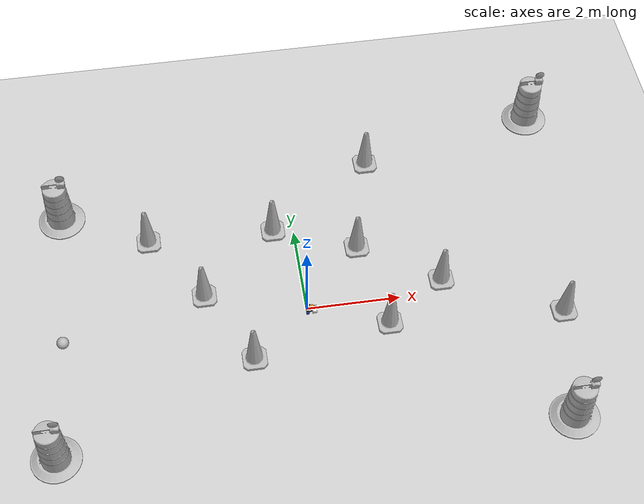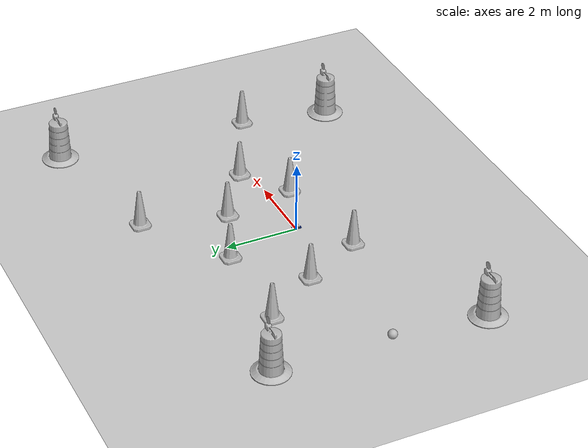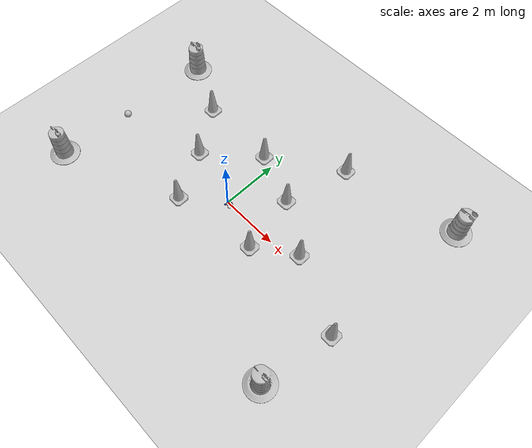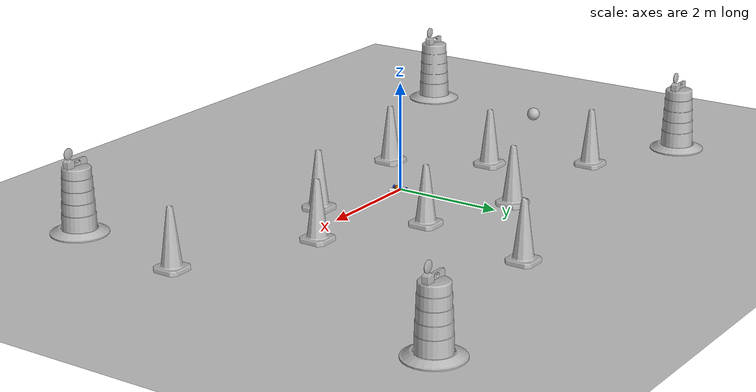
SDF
<sdf version="1.7">
 <world name="default">
  <light name="sun" type="directional">
   <pose>0 0 10 0 -0 0</pose>
   <diffuse>0.8 0.8 0.8 1</diffuse>
   <specular>0.2 0.2 0.2 1</specular>
   <attenuation>
    <range>1000</range>
    <constant>0.9</constant>
    <linear>0.01</linear>
    <quadratic>0.001</quadratic>
   </attenuation>
   <direction>-0.5 0.1 -0.9</direction>
   <spot><inner_angle>0</inner_angle><outer_angle>0</outer_angle><falloff>0</falloff></spot>
  </light>
  <model name="ground_plane">
   <static>1</static>
   <link name="link">
    <collision name="collision">
     <geometry><plane><normal>0 0 1</normal><size>100 100</size></plane></geometry>
     <surface>
      <contact><collide_bitmask>65535</collide_bitmask></contact>
      <friction><ode><mu>100</mu><mu2>50</mu2></ode></friction>
     </surface>
    </collision>
    <visual name="visual">
     <cast_shadows>0</cast_shadows>
     <geometry><plane><normal>0 0 1</normal><size>100 100</size></plane></geometry>
     <material>
      <script><uri>file://media/materials/scripts/gazebo.material</uri><name>Gazebo/Grey</name></script>
     </material>
    </visual>
   </link>
  </model>
  <gravity>0 0 -9.8</gravity>
  <magnetic_field>6e-06 2.3e-05 -4.2e-05</magnetic_field>
  <atmosphere type="adiabatic"/>
  <physics type="ode">
   <max_step_size>0.001</max_step_size>
   <real_time_factor>1</real_time_factor>
   <real_time_update_rate>1000</real_time_update_rate>
  </physics>
  <scene><ambient>0.4 0.4 0.4 1</ambient><background>0.7 0.7 0.7 1</background><shadows>1</shadows></scene>
  <spherical_coordinates>
   <surface_model>EARTH_WGS84</surface_model>
   <latitude_deg>0</latitude_deg>
   <longitude_deg>0</longitude_deg>
   <elevation>0</elevation>
   <heading_deg>0</heading_deg>
  </spherical_coordinates>
  <model name="my_bot">
   <link name="base_link">
    <inertial>
     <pose>0.078524 0.002675 0.031284 0 -0 0</pose>
     <mass>0.743794</mass>
     <inertia>
      <ixx>0.00204888</ixx>
      <ixy>0.000123962</ixy>
      <ixz>1.76967e-05</ixz>
      <iyy>0.00353301</iyy>
      <iyz>4.36807e-05</iyz>
      <izz>0.00432718</izz>
     </inertia>
    </inertial>
    <collision name="base_link_collision">
     <geometry>
      <mesh>
       <scale>1 1 1</scale>
       <uri>file:///home/jagroop/dev_ws/install/my_bot/share/my_bot/description/meshes/base_link.STL</uri>
      </mesh>
     </geometry>
    </collision>
    <collision name="base_link_fixed_joint_lump__camera_link_collision_1">
     <pose>0.16129 0 0.05345 0 -0 0</pose>
     <geometry>
      <mesh>
       <scale>1 1 1</scale>
       <uri>file:///home/jagroop/dev_ws/install/my_bot/share/my_bot/description/meshes/camera collision.STL</uri>
      </mesh>
     </geometry>
    </collision>
    <collision name="base_link_fixed_joint_lump__caster_wheel_collision_2">
     <pose>0.18465 0 -0.00265 1.5708 -0 0</pose>
     <geometry>
      <mesh>
       <scale>1 1 1</scale>
       <uri>file:///home/jagroop/dev_ws/install/my_bot/share/my_bot/description/meshes/caster_wheel.STL</uri>
      </mesh>
     </geometry>
     <surface><friction><ode><mu>0.001</mu><mu2>0.001</mu2></ode></friction></surface>
    </collision>
    <collision name="base_link_fixed_joint_lump__laser_frame_collision_3">
     <pose>0.1048 0 0.082 0 -0 0</pose>
     <geometry>
      <mesh>
       <scale>1 1 1</scale>
       <uri>file:///home/jagroop/dev_ws/install/my_bot/share/my_bot/description/meshes/Lidar collision.STL</uri>
      </mesh>
     </geometry>
    </collision>
    <visual name="base_link_visual">
     <geometry>
      <mesh>
       <scale>1 1 1</scale>
       <uri>file:///home/jagroop/dev_ws/install/my_bot/share/my_bot/description/meshes/base_link.STL</uri>
      </mesh>
     </geometry>
     <material>
      <script><name>Gazebo/Black</name><uri>file://media/materials/scripts/gazebo.material</uri></script>
     </material>
    </visual>
    <visual name="base_link_fixed_joint_lump__camera_link_visual_1">
     <pose>0.16129 0 0.05345 0 -0 0</pose>
     <geometry>
      <mesh>
       <scale>1 1 1</scale>
       <uri>file:///home/jagroop/dev_ws/install/my_bot/share/my_bot/description/meshes/camera_link.STL</uri>
      </mesh>
     </geometry>
     <material>
      <script><name>Gazebo/Orange</name><uri>file://media/materials/scripts/gazebo.material</uri></script>
     </material>
    </visual>
    <visual name="base_link_fixed_joint_lump__caster_wheel_visual_2">
     <pose>0.18465 0 -0.00265 1.5708 -0 0</pose>
     <geometry>
      <mesh>
       <scale>1 1 1</scale>
       <uri>file:///home/jagroop/dev_ws/install/my_bot/share/my_bot/description/meshes/caster_wheel.STL</uri>
      </mesh>
     </geometry>
     <material>
      <script><name>Gazebo/White</name><uri>file://media/materials/scripts/gazebo.material</uri></script>
     </material>
    </visual>
    <visual name="base_link_fixed_joint_lump__laser_frame_visual_3">
     <pose>0.1048 0 0.082 0 -0 0</pose>
     <geometry>
      <mesh>
       <scale>1 1 1</scale>
       <uri>file:///home/jagroop/dev_ws/install/my_bot/share/my_bot/description/meshes/laser_frame.STL</uri>
      </mesh>
     </geometry>
     <material>
      <script><name>Gazebo/Orange</name><uri>file://media/materials/scripts/gazebo.material</uri></script>
     </material>
    </visual>
    <sensor name="laser" type="ray">
     <visualize>1</visualize>
     <update_rate>10</update_rate>
     <ray>
      <scan>
       <horizontal>
        <samples>360</samples>
        <min_angle>-3.14</min_angle>
        <max_angle>3.14</max_angle>
        <resolution>1</resolution>
       </horizontal>
       <vertical><samples>1</samples><min_angle>0</min_angle><max_angle>0</max_angle></vertical>
      </scan>
      <range><min>0.3</min><max>12</max></range>
     </ray>
     <plugin name="laser_controller" filename="libgazebo_ros_ray_sensor.so">
      <ros><argument>--ros-args --remap ~/out:=scan</argument></ros>
      <output_type>sensor_msgs/LaserScan</output_type>
      <frame_name>laser_frame</frame_name>
     </plugin>
     <pose>0.1048 0 0.082 0 -0 0</pose>
    </sensor>
   </link>
   <joint name="left_wheel_joint" type="revolute">
    <pose relative_to="base_link">0.001 0.12868 0.0235 0 -0 0</pose>
    <parent>base_link</parent>
    <child>left_wheel</child>
    <axis>
     <xyz>0 1 0</xyz>
     <limit><lower>-1e+16</lower><upper>1e+16</upper></limit>
     <dynamics><spring_reference>0</spring_reference><spring_stiffness>0</spring_stiffness></dynamics>
    </axis>
   </joint>
   <link name="left_wheel">
    <pose relative_to="left_wheel_joint">0 0 0 0 -0 0</pose>
    <inertial>
     <mass>0.10164</mass>
     <inertia>
      <ixx>3.2133e-05</ixx>
      <ixy>3.03239e-19</ixy>
      <ixz>-1.94585e-21</ixz>
      <iyy>5.36785e-05</iyy>
      <iyz>-3.01898e-21</iyz>
      <izz>3.2133e-05</izz>
     </inertia>
    </inertial>
    <collision name="left_wheel_collision">
     <geometry>
      <mesh>
       <scale>1 1 1</scale>
       <uri>file:///home/jagroop/dev_ws/install/my_bot/share/my_bot/description/meshes/left_wheel.STL</uri>
      </mesh>
     </geometry>
    </collision>
    <visual name="left_wheel_visual">
     <geometry>
      <mesh>
       <scale>1 1 1</scale>
       <uri>file:///home/jagroop/dev_ws/install/my_bot/share/my_bot/description/meshes/left_wheel.STL</uri>
      </mesh>
     </geometry>
     <material>
      <script><name>Gazebo/Blue</name><uri>file://media/materials/scripts/gazebo.material</uri></script>
     </material>
    </visual>
   </link>
   <joint name="right_wheel_joint" type="revolute">
    <pose relative_to="base_link">0.001 -0.12868 0.0235 0 -0 0</pose>
    <parent>base_link</parent>
    <child>right_wheel</child>
    <axis>
     <xyz>0 -1 0</xyz>
     <limit><lower>-1e+16</lower><upper>1e+16</upper></limit>
     <dynamics><spring_reference>0</spring_reference><spring_stiffness>0</spring_stiffness></dynamics>
    </axis>
   </joint>
   <link name="right_wheel">
    <pose relative_to="right_wheel_joint">0 0 0 0 -0 0</pose>
    <inertial>
     <mass>0.10164</mass>
     <inertia>
      <ixx>3.2133e-05</ixx>
      <ixy>3.02447e-19</ixy>
      <ixz>-1.94585e-21</ixz>
      <iyy>5.36785e-05</iyy>
      <iyz>3.8838e-21</iyz>
      <izz>3.2133e-05</izz>
     </inertia>
    </inertial>
    <collision name="right_wheel_collision">
     <geometry>
      <mesh>
       <scale>1 1 1</scale>
       <uri>file:///home/jagroop/dev_ws/install/my_bot/share/my_bot/description/meshes/right_wheel.STL</uri>
      </mesh>
     </geometry>
    </collision>
    <visual name="right_wheel_visual">
     <geometry>
      <mesh>
       <scale>1 1 1</scale>
       <uri>file:///home/jagroop/dev_ws/install/my_bot/share/my_bot/description/meshes/right_wheel.STL</uri>
      </mesh>
     </geometry>
     <material>
      <script><name>Gazebo/Blue</name><uri>file://media/materials/scripts/gazebo.material</uri></script>
     </material>
    </visual>
   </link>
   <static>0</static>
   <plugin name="diff_drive" filename="libgazebo_ros_diff_drive.so">
    <left_joint>left_wheel_joint</left_joint>
    <right_joint>right_wheel_joint</right_joint>
    <wheel_separation>0.35</wheel_separation>
    <wheel_diameter>0.1</wheel_diameter>
    <max_wheel_torque>200</max_wheel_torque>
    <max_wheel_acceleration>10.0</max_wheel_acceleration>
    <odometry_frame>odom</odometry_frame>
    <robot_base_frame>base_link</robot_base_frame>
    <publish_odom>1</publish_odom>
    <publish_odom_tf>1</publish_odom_tf>
    <publish_wheel_tf>1</publish_wheel_tf>
   </plugin>
   <pose>0.001509 0.000129 0.008978 3e-05 -5.5e-05 0.018444</pose>
  </model>
  <model name="Construction Barrel">
   <link name="link">
    <inertial>
     <pose>0 0 0.4 0 -0 0</pose>
     <mass>500</mass>
     <inertia><ixx>51.2096</ixx><iyy>51.2096</iyy><izz>25</izz><ixy>0</ixy><ixz>0</ixz><iyz>0</iyz></inertia>
    </inertial>
    <collision name="collision">
     <geometry><mesh><uri>model://construction_barrel/meshes/construction_barrel.dae</uri></mesh></geometry>
    </collision>
    <visual name="visual">
     <geometry><mesh><uri>model://construction_barrel/meshes/construction_barrel.dae</uri></mesh></geometry>
    </visual>
   </link>
   <pose>4.89805 -3.26889 1e-06 3e-06 2e-06 -2.2e-05</pose>
  </model>
  <model name="Construction Cone">
   <link name="link">
    <collision name="collision">
     <geometry>
      <mesh><scale>10 10 10</scale><uri>model://construction_cone/meshes/construction_cone.dae</uri></mesh>
     </geometry>
    </collision>
    <visual name="visual">
     <geometry>
      <mesh><scale>10 10 10</scale><uri>model://construction_cone/meshes/construction_cone.dae</uri></mesh>
     </geometry>
    </visual>
    <inertial>
     <inertia><ixx>1</ixx><ixy>0</ixy><ixz>0</ixz><iyy>1</iyy><iyz>0</iyz><izz>1</izz></inertia>
     <mass>1</mass>
    </inertial>
   </link>
   <pose>1.66526 -0.604684 -0 0 -0 0</pose>
  </model>
  <model name="Construction Cone_0">
   <link name="link">
    <collision name="collision">
     <geometry>
      <mesh><scale>10 10 10</scale><uri>model://construction_cone/meshes/construction_cone.dae</uri></mesh>
     </geometry>
    </collision>
    <visual name="visual">
     <geometry>
      <mesh><scale>10 10 10</scale><uri>model://construction_cone/meshes/construction_cone.dae</uri></mesh>
     </geometry>
    </visual>
    <inertial>
     <inertia><ixx>1</ixx><ixy>0</ixy><ixz>0</ixz><iyy>1</iyy><iyz>0</iyz><izz>1</izz></inertia>
     <mass>1</mass>
    </inertial>
   </link>
   <pose>2.95039 0.304555 -0 0 -0 0</pose>
  </model>
  <model name="Construction Cone_1">
   <link name="link">
    <collision name="collision">
     <geometry>
      <mesh><scale>10 10 10</scale><uri>model://construction_cone/meshes/construction_cone.dae</uri></mesh>
     </geometry>
    </collision>
    <visual name="visual">
     <geometry>
      <mesh><scale>10 10 10</scale><uri>model://construction_cone/meshes/construction_cone.dae</uri></mesh>
     </geometry>
    </visual>
    <inertial>
     <inertia><ixx>1</ixx><ixy>0</ixy><ixz>0</ixz><iyy>1</iyy><iyz>0</iyz><izz>1</izz></inertia>
     <mass>1</mass>
    </inertial>
   </link>
   <pose>5.34089 -0.843844 -0 0 -1e-06 0</pose>
  </model>
  <model name="Construction Cone_2">
   <link name="link">
    <collision name="collision">
     <geometry>
      <mesh><scale>10 10 10</scale><uri>model://construction_cone/meshes/construction_cone.dae</uri></mesh>
     </geometry>
    </collision>
    <visual name="visual">
     <geometry>
      <mesh><scale>10 10 10</scale><uri>model://construction_cone/meshes/construction_cone.dae</uri></mesh>
     </geometry>
    </visual>
    <inertial>
     <inertia><ixx>1</ixx><ixy>0</ixy><ixz>0</ixz><iyy>1</iyy><iyz>0</iyz><izz>1</izz></inertia>
     <mass>1</mass>
    </inertial>
   </link>
   <pose>1.30249 1.39937 -4e-06 3e-06 -0 0</pose>
  </model>
  <model name="Construction Cone_3">
   <link name="link">
    <collision name="collision">
     <geometry>
      <mesh><scale>10 10 10</scale><uri>model://construction_cone/meshes/construction_cone.dae</uri></mesh>
     </geometry>
    </collision>
    <visual name="visual">
     <geometry>
      <mesh><scale>10 10 10</scale><uri>model://construction_cone/meshes/construction_cone.dae</uri></mesh>
     </geometry>
    </visual>
    <inertial>
     <inertia><ixx>1</ixx><ixy>0</ixy><ixz>0</ixz><iyy>1</iyy><iyz>0</iyz><izz>1</izz></inertia>
     <mass>1</mass>
    </inertial>
   </link>
   <pose>-0.445996 2.09382 -0 0 -0 0</pose>
  </model>
  <model name="Construction Cone_4">
   <link name="link">
    <collision name="collision">
     <geometry>
      <mesh><scale>10 10 10</scale><uri>model://construction_cone/meshes/construction_cone.dae</uri></mesh>
     </geometry>
    </collision>
    <visual name="visual">
     <geometry>
      <mesh><scale>10 10 10</scale><uri>model://construction_cone/meshes/construction_cone.dae</uri></mesh>
     </geometry>
    </visual>
    <inertial>
     <inertia><ixx>1</ixx><ixy>0</ixy><ixz>0</ixz><iyy>1</iyy><iyz>0</iyz><izz>1</izz></inertia>
     <mass>1</mass>
    </inertial>
   </link>
   <pose>1.87996 3.67171 -0 -0 -0 -0</pose>
  </model>
  <model name="Construction Cone_5">
   <link name="link">
    <collision name="collision">
     <geometry>
      <mesh><scale>10 10 10</scale><uri>model://construction_cone/meshes/construction_cone.dae</uri></mesh>
     </geometry>
    </collision>
    <visual name="visual">
     <geometry>
      <mesh><scale>10 10 10</scale><uri>model://construction_cone/meshes/construction_cone.dae</uri></mesh>
     </geometry>
    </visual>
    <inertial>
     <inertia><ixx>1</ixx><ixy>0</ixy><ixz>0</ixz><iyy>1</iyy><iyz>0</iyz><izz>1</izz></inertia>
     <mass>1</mass>
    </inertial>
   </link>
   <pose>-2.1039 0.611073 0 -0 -0 -0</pose>
  </model>
  <model name="Construction Cone_6">
   <link name="link">
    <collision name="collision">
     <geometry>
      <mesh><scale>10 10 10</scale><uri>model://construction_cone/meshes/construction_cone.dae</uri></mesh>
     </geometry>
    </collision>
    <visual name="visual">
     <geometry>
      <mesh><scale>10 10 10</scale><uri>model://construction_cone/meshes/construction_cone.dae</uri></mesh>
     </geometry>
    </visual>
    <inertial>
     <inertia><ixx>1</ixx><ixy>0</ixy><ixz>0</ixz><iyy>1</iyy><iyz>0</iyz><izz>1</izz></inertia>
     <mass>1</mass>
    </inertial>
   </link>
   <pose>-3.17001 2.18162 0 -0 -0 -0</pose>
  </model>
  <model name="Construction Cone_7">
   <link name="link">
    <collision name="collision">
     <geometry>
      <mesh><scale>10 10 10</scale><uri>model://construction_cone/meshes/construction_cone.dae</uri></mesh>
     </geometry>
    </collision>
    <visual name="visual">
     <geometry>
      <mesh><scale>10 10 10</scale><uri>model://construction_cone/meshes/construction_cone.dae</uri></mesh>
     </geometry>
    </visual>
    <inertial>
     <inertia><ixx>1</ixx><ixy>0</ixy><ixz>0</ixz><iyy>1</iyy><iyz>0</iyz><izz>1</izz></inertia>
     <mass>1</mass>
    </inertial>
   </link>
   <pose>-1.23571 -1.05518 -0 0 -0 0</pose>
  </model>
  <model name="Construction Barrel_0">
   <link name="link">
    <inertial>
     <pose>0 0 0.4 0 -0 0</pose>
     <mass>500</mass>
     <inertia><ixx>51.2096</ixx><iyy>51.2096</iyy><izz>25</izz><ixy>0</ixy><ixz>0</ixz><iyz>0</iyz></inertia>
    </inertial>
    <collision name="collision">
     <geometry><mesh><uri>model://construction_barrel/meshes/construction_barrel.dae</uri></mesh></geometry>
    </collision>
    <visual name="visual">
     <geometry><mesh><uri>model://construction_barrel/meshes/construction_barrel.dae</uri></mesh></geometry>
    </visual>
   </link>
   <pose>5.82473 4.49067 -1e-06 3e-06 1e-05 -7e-06</pose>
  </model>
  <model name="Construction Barrel_1">
   <link name="link">
    <inertial>
     <pose>0 0 0.4 0 -0 0</pose>
     <mass>500</mass>
     <inertia><ixx>51.2096</ixx><iyy>51.2096</iyy><izz>25</izz><ixy>0</ixy><ixz>0</ixz><iyz>0</iyz></inertia>
    </inertial>
    <collision name="collision">
     <geometry><mesh><uri>model://construction_barrel/meshes/construction_barrel.dae</uri></mesh></geometry>
    </collision>
    <visual name="visual">
     <geometry><mesh><uri>model://construction_barrel/meshes/construction_barrel.dae</uri></mesh></geometry>
    </visual>
   </link>
   <pose>-5.02471 3.07511 1e-06 2e-06 3e-06 -6e-06</pose>
  </model>
  <model name="Construction Barrel_2">
   <link name="link">
    <inertial>
     <pose>0 0 0.4 0 -0 0</pose>
     <mass>500</mass>
     <inertia><ixx>51.2096</ixx><iyy>51.2096</iyy><izz>25</izz><ixy>0</ixy><ixz>0</ixz><iyz>0</iyz></inertia>
    </inertial>
    <collision name="collision">
     <geometry><mesh><uri>model://construction_barrel/meshes/construction_barrel.dae</uri></mesh></geometry>
    </collision>
    <visual name="visual">
     <geometry><mesh><uri>model://construction_barrel/meshes/construction_barrel.dae</uri></mesh></geometry>
    </visual>
   </link>
   <pose>-5.3285 -2.71747 0 0 0 -3e-06</pose>
  </model>
  <model name="frc2016_ball">
   <pose>-5.10263 -0.1621 0.127 0 -0 0</pose>
   <link name="link">
    <inertial>
     <mass>0.213</mass>
     <inertia>
      <ixx>0.00322667</ixx>
      <ixy>0</ixy>
      <ixz>0</ixz>
      <iyy>0.00322667</iyy>
      <iyz>0</iyz>
      <izz>0.00322667</izz>
     </inertia>
    </inertial>
    <visual name="visual"><geometry><sphere><radius>0.127</radius></sphere></geometry></visual>
    <collision name="collision">
     <geometry><sphere><radius>0.127</radius></sphere></geometry>
     <surface>
      <bounce><restitution_coefficient>0.15937</restitution_coefficient><threshold>0</threshold></bounce>
      <contact><ode><max_vel>100</max_vel><min_depth>0.001</min_depth></ode></contact>
     </surface>
    </collision>
   </link>
  </model>
 </world>
</sdf>
